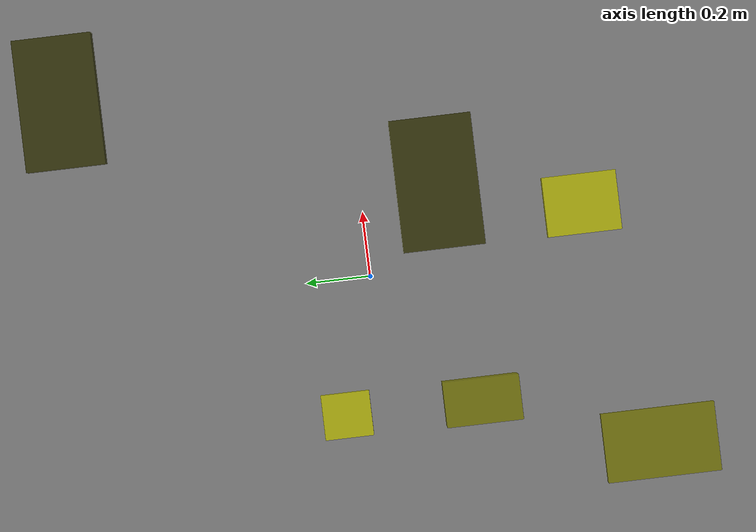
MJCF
<?xml version="1.0"?>
<mujoco model="obstacle_scene">
  <compiler angle="radian" coordinate="local"/>
  <option timestep="0.001" gravity="0 0 -9.81"/>

  <asset>
    <material name="obstacle_mat" rgba="0.8 0.8 0.0 0.8"/>
    <material name="ground_mat" rgba="0.5 0.5 0.5 1"/>
  </asset>

  <worldbody>
    <!-- Ground plane -->
    <geom name="ground" type="plane" size="3 3 0.1" material="ground_mat"/>

    <!-- Obstacles -->
    <body name="obstacle_0" pos="0.255244 -0.229273 0.679871">
      <geom name="obs_0" type="box" size="0.196601 0.121807 0.131606" rgba="0.2 0.2 0.0 0.8"/>
    </body>
    <body name="obstacle_1" pos="-0.582082 -0.792452 0.888394">
      <geom name="obs_1" type="box" size="0.101764 0.167428 0.034127" rgba="0.5 0.5 0.0 0.8"/>
    </body>
    <body name="obstacle_2" pos="-0.413998 0.119990 0.263176">
      <geom name="obs_2" type="box" size="0.067950 0.074403 0.067411" rgba="0.8 0.8 0.0 0.8"/>
    </body>
    <body name="obstacle_3" pos="0.615059 0.844686 0.979900">
      <geom name="obs_3" type="box" size="0.193456 0.116538 0.053183" rgba="0.2 0.2 0.0 0.8"/>
    </body>
    <body name="obstacle_4" pos="-0.414832 -0.295603 0.322635">
      <geom name="obs_4" type="box" size="0.068710 0.116372 0.129981" rgba="0.5 0.5 0.0 0.8"/>
    </body>
    <body name="obstacle_5" pos="0.146635 -0.674514 0.143532">
      <geom name="obs_5" type="box" size="0.092404 0.114212 0.056555" rgba="0.8 0.8 0.0 0.8"/>
    </body>
  </worldbody>
</mujoco>
